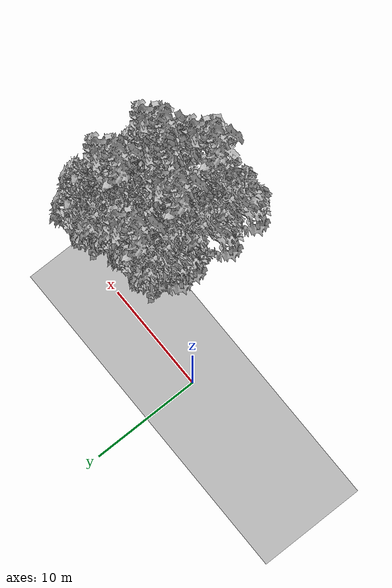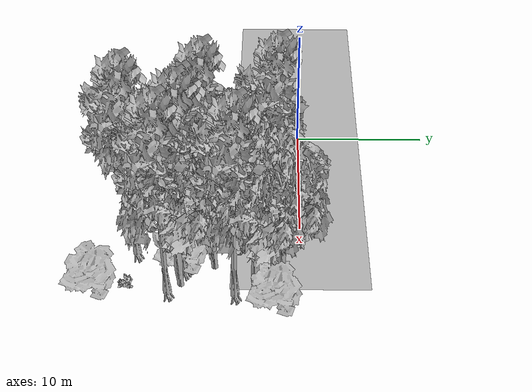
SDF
<sdf version="1.7">
 <world name="default">
  <model name="ground_plane">
   <static>1</static>
   <link name="link">
    <collision name="collision">
     <pose>-50 0 0 0 -0 0</pose>
     <geometry><plane><normal>0 0 1</normal><size>100 100</size></plane></geometry>
     <surface><contact><ode><min_depth>0.01</min_depth><max_vel>0</max_vel></ode></contact></surface>
    </collision>
    <visual name="grass">
     <cast_shadows>0</cast_shadows>
     <geometry>
      <mesh>
       <scale>0.5814285714285714 0.18142857142857144 0.1</scale>
       <uri>file://grass_plane/meshes/grass_plane.dae</uri>
      </mesh>
     </geometry>
    </visual>
   </link>
  </model>
  <model name="Tree 13">
   <static>1</static>
   <pose>13.647802342299308 -6.039625585213269 0 1.57079 -0 0</pose>
   <link name="link">
    <collision name="collision">
     <geometry><mesh><scale>3.5 5 3.5</scale><uri>model://tree_2/meshes/tree_2.obj</uri></mesh></geometry>
    </collision>
    <visual name="visual">
     <geometry><mesh><scale>3.5 5 3.5</scale><uri>model://tree_2/meshes/tree_2.obj</uri></mesh></geometry>
    </visual>
   </link>
  </model>
  <model name="Tree 96">
   <static>1</static>
   <pose>14.64442832405853 -1.30870445190242 0 1.57079 -0 0</pose>
   <link name="link">
    <collision name="collision">
     <geometry><mesh><scale>3.5 5 3.5</scale><uri>model://tree_2/meshes/tree_2.obj</uri></mesh></geometry>
    </collision>
    <visual name="visual">
     <geometry><mesh><scale>3.5 5 3.5</scale><uri>model://tree_2/meshes/tree_2.obj</uri></mesh></geometry>
    </visual>
   </link>
  </model>
  <model name="Tree 101">
   <static>1</static>
   <pose>8.899466644018865 -5.698544699663742 0 1.57079 -0 0</pose>
   <link name="link">
    <collision name="collision">
     <geometry><mesh><scale>4 2.5 4</scale><uri>model://tree_1/meshes/tree_1.obj</uri></mesh></geometry>
    </collision>
    <visual name="visual">
     <geometry><mesh><scale>4 2.5 4</scale><uri>model://tree_1/meshes/tree_1.obj</uri></mesh></geometry>
    </visual>
   </link>
  </model>
  <model name="Tree 114">
   <static>1</static>
   <pose>15.250330492955314 -8.305898293526289 0 1.57079 -0 0</pose>
   <link name="link">
    <collision name="collision">
     <geometry><mesh><scale>3.5 5 3.5</scale><uri>model://tree_2/meshes/tree_2.obj</uri></mesh></geometry>
    </collision>
    <visual name="visual">
     <geometry><mesh><scale>3.5 5 3.5</scale><uri>model://tree_2/meshes/tree_2.obj</uri></mesh></geometry>
    </visual>
   </link>
  </model>
  <model name="Tree 167">
   <static>1</static>
   <pose>8.775056080979539 -10.717438455509498 0 1.57079 -0 0</pose>
   <link name="link">
    <collision name="collision">
     <geometry><mesh><scale>3.5 5 3.5</scale><uri>model://tree_2/meshes/tree_2.obj</uri></mesh></geometry>
    </collision>
    <visual name="visual">
     <geometry><mesh><scale>3.5 5 3.5</scale><uri>model://tree_2/meshes/tree_2.obj</uri></mesh></geometry>
    </visual>
   </link>
  </model>
  <model name="Tree 180">
   <static>1</static>
   <pose>8.815643001804055 -2.7473762257743655 0 1.57079 -0 0</pose>
   <link name="link">
    <collision name="collision">
     <geometry><mesh><scale>3.5 5 3.5</scale><uri>model://tree_2/meshes/tree_2.obj</uri></mesh></geometry>
    </collision>
    <visual name="visual">
     <geometry><mesh><scale>3.5 5 3.5</scale><uri>model://tree_2/meshes/tree_2.obj</uri></mesh></geometry>
    </visual>
   </link>
  </model>
  <model name="Tree 195">
   <static>1</static>
   <pose>12.1658534245934 -5.0341098271846825 0 1.57079 -0 0</pose>
   <link name="link">
    <collision name="collision">
     <geometry><mesh><scale>3.5 5 3.5</scale><uri>model://tree_2/meshes/tree_2.obj</uri></mesh></geometry>
    </collision>
    <visual name="visual">
     <geometry><mesh><scale>3.5 5 3.5</scale><uri>model://tree_2/meshes/tree_2.obj</uri></mesh></geometry>
    </visual>
   </link>
  </model>
  <model name="Tree 240">
   <static>1</static>
   <pose>13.651267460514191 -7.875373713302915 0 1.57079 -0 0</pose>
   <link name="link">
    <collision name="collision">
     <geometry><mesh><scale>3.5 5 3.5</scale><uri>model://tree_9/meshes/tree_9.obj</uri></mesh></geometry>
    </collision>
    <visual name="visual">
     <geometry><mesh><scale>3.5 5 3.5</scale><uri>model://tree_9/meshes/tree_9.obj</uri></mesh></geometry>
    </visual>
   </link>
  </model>
  <model name="Tree 242">
   <static>1</static>
   <pose>14.0752552035772 -8.103469665347893 0 1.57079 -0 0</pose>
   <link name="link">
    <collision name="collision">
     <geometry><mesh><scale>3.5 5 3.5</scale><uri>model://tree_9/meshes/tree_9.obj</uri></mesh></geometry>
    </collision>
    <visual name="visual">
     <geometry><mesh><scale>3.5 5 3.5</scale><uri>model://tree_9/meshes/tree_9.obj</uri></mesh></geometry>
    </visual>
   </link>
  </model>
  <model name="Tree 246">
   <static>1</static>
   <pose>12.729589794073753 -8.545250149740387 0 1.57079 -0 0</pose>
   <link name="link">
    <collision name="collision">
     <geometry><mesh><scale>3 2 3</scale><uri>model://tree_3/meshes/tree_3.obj</uri></mesh></geometry>
    </collision>
    <visual name="visual">
     <geometry><mesh><scale>3 2 3</scale><uri>model://tree_3/meshes/tree_3.obj</uri></mesh></geometry>
    </visual>
   </link>
  </model>
  <model name="Tree 275">
   <static>1</static>
   <pose>11.26771567572878 -2.7758538645412507 0 1.57079 -0 0</pose>
   <link name="link">
    <collision name="collision">
     <geometry><mesh><scale>3.5 5 3.5</scale><uri>model://tree_2/meshes/tree_2.obj</uri></mesh></geometry>
    </collision>
    <visual name="visual">
     <geometry><mesh><scale>3.5 5 3.5</scale><uri>model://tree_2/meshes/tree_2.obj</uri></mesh></geometry>
    </visual>
   </link>
  </model>
  <model name="Tree 332">
   <static>1</static>
   <pose>16.17978568520452 -4.502826192515085 0 1.57079 -0 0</pose>
   <link name="link">
    <collision name="collision">
     <geometry><mesh><scale>3.5 5 3.5</scale><uri>model://tree_9/meshes/tree_9.obj</uri></mesh></geometry>
    </collision>
    <visual name="visual">
     <geometry><mesh><scale>3.5 5 3.5</scale><uri>model://tree_9/meshes/tree_9.obj</uri></mesh></geometry>
    </visual>
   </link>
  </model>
  <model name="Tree 366">
   <static>1</static>
   <pose>13.455907808623216 -2.3190080010147227 0 1.57079 -0 0</pose>
   <link name="link">
    <collision name="collision">
     <geometry><mesh><scale>3.5 5 3.5</scale><uri>model://tree_2/meshes/tree_2.obj</uri></mesh></geometry>
    </collision>
    <visual name="visual">
     <geometry><mesh><scale>3.5 5 3.5</scale><uri>model://tree_2/meshes/tree_2.obj</uri></mesh></geometry>
    </visual>
   </link>
  </model>
  <model name="Tree 390">
   <static>1</static>
   <pose>12.424044101618627 -11.59528147521202 0 1.57079 -0 0</pose>
   <link name="link">
    <collision name="collision">
     <geometry><mesh><scale>3.5 5 3.5</scale><uri>model://tree_9/meshes/tree_9.obj</uri></mesh></geometry>
    </collision>
    <visual name="visual">
     <geometry><mesh><scale>3.5 5 3.5</scale><uri>model://tree_9/meshes/tree_9.obj</uri></mesh></geometry>
    </visual>
   </link>
  </model>
  <model name="Tree 407">
   <static>1</static>
   <pose>15.970720063622707 -3.107474951997025 0 1.57079 -0 0</pose>
   <link name="link">
    <collision name="collision">
     <geometry><mesh><scale>3.5 5 3.5</scale><uri>model://tree_2/meshes/tree_2.obj</uri></mesh></geometry>
    </collision>
    <visual name="visual">
     <geometry><mesh><scale>3.5 5 3.5</scale><uri>model://tree_2/meshes/tree_2.obj</uri></mesh></geometry>
    </visual>
   </link>
  </model>
  <model name="Tree 474">
   <static>1</static>
   <pose>8.480976368272025 -7.627782295832852 0 1.57079 -0 0</pose>
   <link name="link">
    <collision name="collision">
     <geometry><mesh><scale>3.5 5 3.5</scale><uri>model://tree_2/meshes/tree_2.obj</uri></mesh></geometry>
    </collision>
    <visual name="visual">
     <geometry><mesh><scale>3.5 5 3.5</scale><uri>model://tree_2/meshes/tree_2.obj</uri></mesh></geometry>
    </visual>
   </link>
  </model>
  <model name="Tree 484">
   <static>1</static>
   <pose>10.45240741184331 -1.9491014814005378 0 1.57079 -0 0</pose>
   <link name="link">
    <collision name="collision">
     <geometry><mesh><scale>3.5 5 3.5</scale><uri>model://tree_9/meshes/tree_9.obj</uri></mesh></geometry>
    </collision>
    <visual name="visual">
     <geometry><mesh><scale>3.5 5 3.5</scale><uri>model://tree_9/meshes/tree_9.obj</uri></mesh></geometry>
    </visual>
   </link>
  </model>
  <model name="Tree 490">
   <static>1</static>
   <pose>8.849777792675923 -4.165289217489281 0 1.57079 -0 0</pose>
   <link name="link">
    <collision name="collision">
     <geometry><mesh><scale>3.5 5 3.5</scale><uri>model://tree_2/meshes/tree_2.obj</uri></mesh></geometry>
    </collision>
    <visual name="visual">
     <geometry><mesh><scale>3.5 5 3.5</scale><uri>model://tree_2/meshes/tree_2.obj</uri></mesh></geometry>
    </visual>
   </link>
  </model>
  <model name="Tree 498">
   <static>1</static>
   <pose>11.017710384682637 -6.780324470662281 0 1.57079 -0 0</pose>
   <link name="link">
    <collision name="collision">
     <geometry><mesh><scale>3.5 5 3.5</scale><uri>model://tree_9/meshes/tree_9.obj</uri></mesh></geometry>
    </collision>
    <visual name="visual">
     <geometry><mesh><scale>3.5 5 3.5</scale><uri>model://tree_9/meshes/tree_9.obj</uri></mesh></geometry>
    </visual>
   </link>
  </model>
  <model name="Tree 518">
   <static>1</static>
   <pose>16.301221569922333 -2.0569916706672497 0 1.57079 -0 0</pose>
   <link name="link">
    <collision name="collision">
     <geometry><mesh><scale>3 2 3</scale><uri>model://tree_3/meshes/tree_3.obj</uri></mesh></geometry>
    </collision>
    <visual name="visual">
     <geometry><mesh><scale>3 2 3</scale><uri>model://tree_3/meshes/tree_3.obj</uri></mesh></geometry>
    </visual>
   </link>
  </model>
  <model name="Tree 531">
   <static>1</static>
   <pose>14.989051820565216 -14.661302839516374 0 1.57079 -0 0</pose>
   <link name="link">
    <collision name="collision">
     <geometry><mesh><scale>3 2 3</scale><uri>model://tree_3/meshes/tree_3.obj</uri></mesh></geometry>
    </collision>
    <visual name="visual">
     <geometry><mesh><scale>3 2 3</scale><uri>model://tree_3/meshes/tree_3.obj</uri></mesh></geometry>
    </visual>
   </link>
  </model>
  <model name="Tree 533">
   <static>1</static>
   <pose>15.963215079528581 -9.149850571083764 0 1.57079 -0 0</pose>
   <link name="link">
    <collision name="collision">
     <geometry><mesh><scale>3.5 5 3.5</scale><uri>model://tree_9/meshes/tree_9.obj</uri></mesh></geometry>
    </collision>
    <visual name="visual">
     <geometry><mesh><scale>3.5 5 3.5</scale><uri>model://tree_9/meshes/tree_9.obj</uri></mesh></geometry>
    </visual>
   </link>
  </model>
  <model name="Bush 4">
   <static>1</static>
   <pose>15.121758569248684 -12.149342400159306 0 1.57079 -0 0</pose>
   <link name="link">
    <collision name="collision">
     <geometry><mesh><scale>2 2 2</scale><uri>model://bush_2/meshes/bush_2.obj</uri></mesh></geometry>
     <surface><contact><collide_without_contact>false</collide_without_contact></contact></surface>
    </collision>
    <visual name="visual">
     <geometry><mesh><scale>2 2 2</scale><uri>model://bush_2/meshes/bush_2.obj</uri></mesh></geometry>
    </visual>
   </link>
  </model>
 </world>
</sdf>
